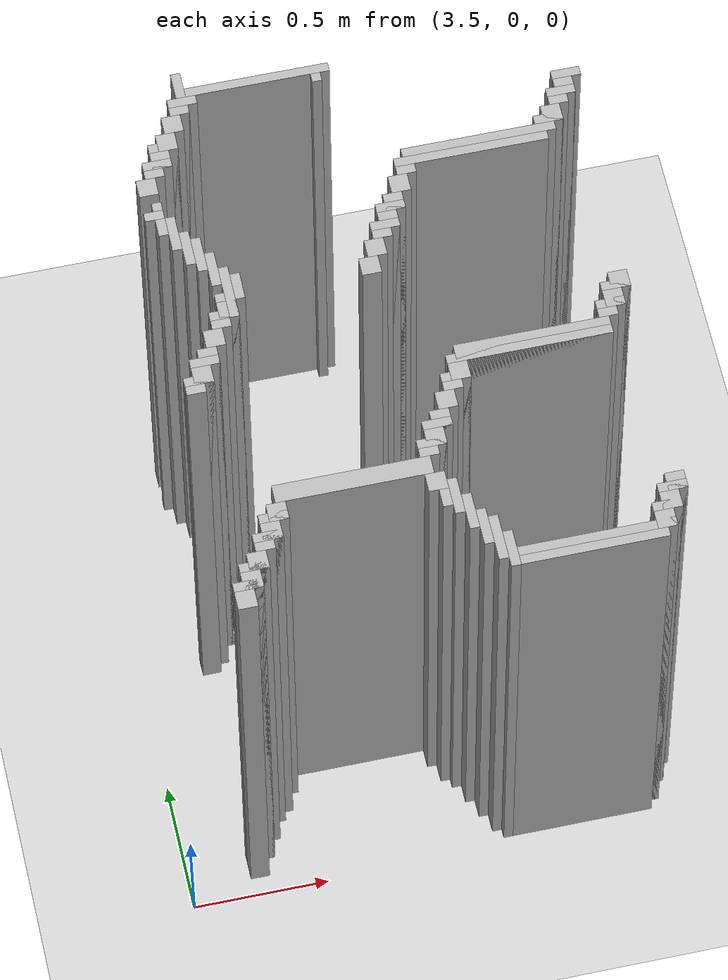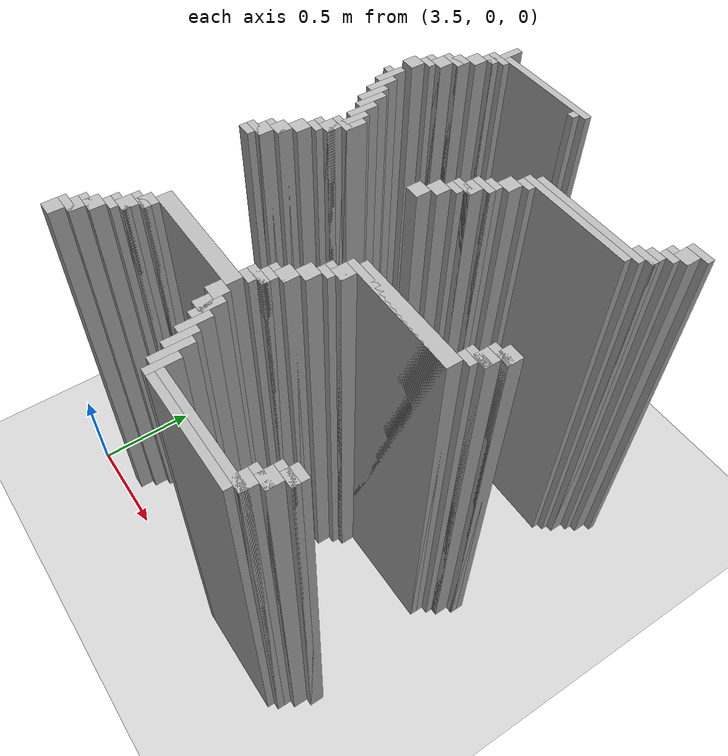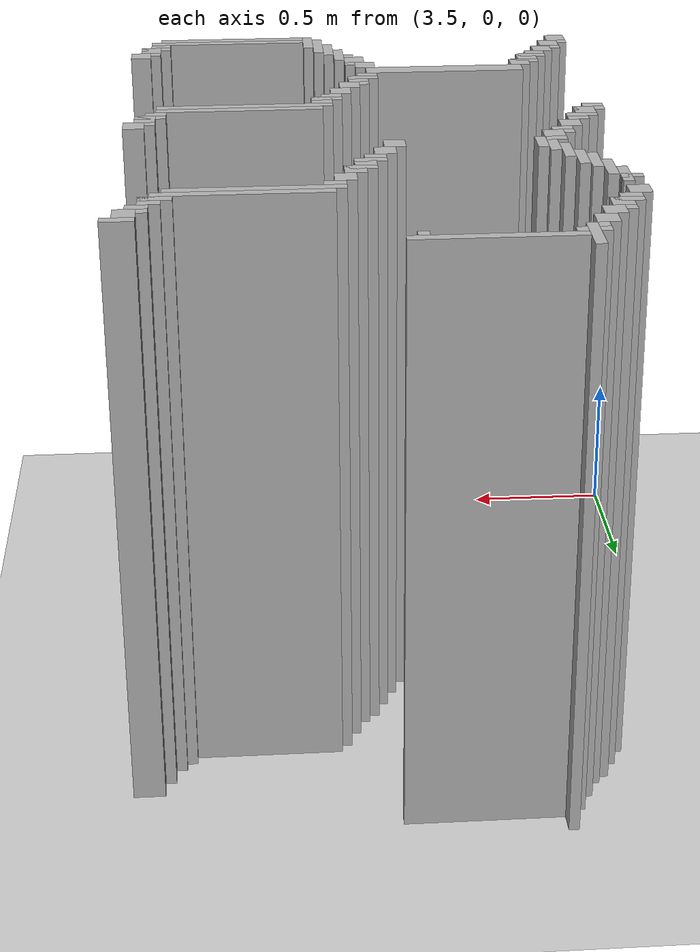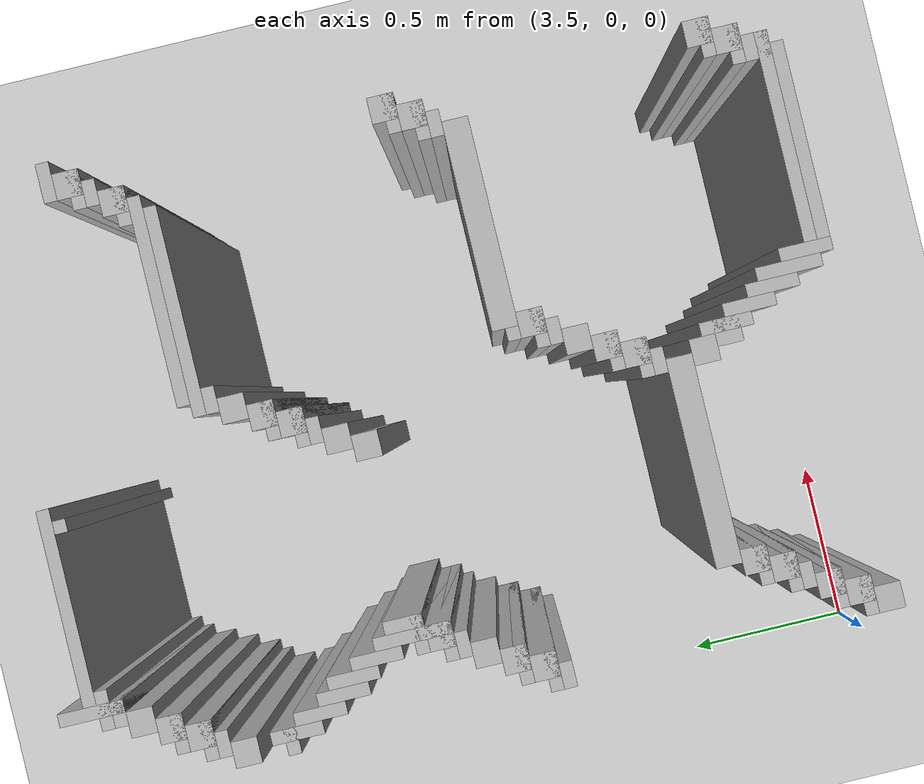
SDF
<sdf version="1.6">
 <world name="slam_world">
  <model name="ground_plane">
   <static>true</static>
   <link name="link">
    <collision name="collision">
     <geometry><plane><normal>0 0 1</normal><size>100 100</size></plane></geometry>
    </collision>
    <visual name="visual">
     <geometry><plane><normal>0 0 1</normal><size>100 100</size></plane></geometry>
     <material>
      <ambient>0.8 0.8 0.8 1</ambient>
      <diffuse>0.8 0.8 0.8 1</diffuse>
      <specular>0.8 0.8 0.8 1</specular>
     </material>
    </visual>
   </link>
  </model>
  <model name="wall_5121">
   <static>true</static>
   <pose>3.9501160092807424 2.1751740139211138 1.0 0 0 0</pose>
   <link name="link">
    <collision name="collision">
     <geometry><box><size>0.03480278422273782 0.17401392111368907 2.0</size></box></geometry>
    </collision>
    <visual name="visual">
     <geometry><box><size>0.03480278422273782 0.17401392111368907 2.0</size></box></geometry>
     <material><ambient>0.5 0.5 0.5 1</ambient><diffuse>0.7 0.7 0.7 1</diffuse></material>
    </visual>
   </link>
  </model>
  <model name="wall_5151">
   <static>true</static>
   <pose>4.228538283062645 2.1751740139211138 1.0 0 0 0</pose>
   <link name="link">
    <collision name="collision">
     <geometry><box><size>0.5220417633410672 0.03480278422273782 2.0</size></box></geometry>
    </collision>
    <visual name="visual">
     <geometry><box><size>0.5220417633410672 0.03480278422273782 2.0</size></box></geometry>
     <material><ambient>0.5 0.5 0.5 1</ambient><diffuse>0.7 0.7 0.7 1</diffuse></material>
    </visual>
   </link>
  </model>
  <model name="wall_5164">
   <static>true</static>
   <pose>3.9501160092807424 2.140371229698376 1.0 0 0 0</pose>
   <link name="link">
    <collision name="collision">
     <geometry><box><size>0.10440835266821345 0.03480278422273782 2.0</size></box></geometry>
    </collision>
    <visual name="visual">
     <geometry><box><size>0.10440835266821345 0.03480278422273782 2.0</size></box></geometry>
     <material><ambient>0.5 0.5 0.5 1</ambient><diffuse>0.7 0.7 0.7 1</diffuse></material>
    </visual>
   </link>
  </model>
  <model name="wall_5165">
   <static>true</static>
   <pose>4.437354988399072 2.140371229698376 1.0 0 0 0</pose>
   <link name="link">
    <collision name="collision">
     <geometry><box><size>0.03480278422273782 0.03480278422273782 2.0</size></box></geometry>
    </collision>
    <visual name="visual">
     <geometry><box><size>0.03480278422273782 0.03480278422273782 2.0</size></box></geometry>
     <material><ambient>0.5 0.5 0.5 1</ambient><diffuse>0.7 0.7 0.7 1</diffuse></material>
    </visual>
   </link>
  </model>
  <model name="wall_5182">
   <static>true</static>
   <pose>3.932714617169373 2.105568445475638 1.0 0 0 0</pose>
   <link name="link">
    <collision name="collision">
     <geometry><box><size>0.06960556844547564 0.03480278422273782 2.0</size></box></geometry>
    </collision>
    <visual name="visual">
     <geometry><box><size>0.06960556844547564 0.03480278422273782 2.0</size></box></geometry>
     <material><ambient>0.5 0.5 0.5 1</ambient><diffuse>0.7 0.7 0.7 1</diffuse></material>
    </visual>
   </link>
  </model>
  <model name="wall_5197">
   <static>true</static>
   <pose>3.897911832946636 2.053364269141531 1.0 0 0 0</pose>
   <link name="link">
    <collision name="collision">
     <geometry><box><size>0.06960556844547564 0.06960556844547564 2.0</size></box></geometry>
    </collision>
    <visual name="visual">
     <geometry><box><size>0.06960556844547564 0.06960556844547564 2.0</size></box></geometry>
     <material><ambient>0.5 0.5 0.5 1</ambient><diffuse>0.7 0.7 0.7 1</diffuse></material>
    </visual>
   </link>
  </model>
  <model name="wall_5212">
   <static>true</static>
   <pose>3.863109048723898 1.9837587006960555 1.0 0 0 0</pose>
   <link name="link">
    <collision name="collision">
     <geometry><box><size>0.06960556844547564 0.06960556844547564 2.0</size></box></geometry>
    </collision>
    <visual name="visual">
     <geometry><box><size>0.06960556844547564 0.06960556844547564 2.0</size></box></geometry>
     <material><ambient>0.5 0.5 0.5 1</ambient><diffuse>0.7 0.7 0.7 1</diffuse></material>
    </visual>
   </link>
  </model>
  <model name="wall_5227">
   <static>true</static>
   <pose>3.845707656612529 1.9663573085846866 1.0 0 0 0</pose>
   <link name="link">
    <collision name="collision">
     <geometry><box><size>0.10440835266821345 0.03480278422273782 2.0</size></box></geometry>
    </collision>
    <visual name="visual">
     <geometry><box><size>0.10440835266821345 0.03480278422273782 2.0</size></box></geometry>
     <material><ambient>0.5 0.5 0.5 1</ambient><diffuse>0.7 0.7 0.7 1</diffuse></material>
    </visual>
   </link>
  </model>
  <model name="wall_5228">
   <static>true</static>
   <pose>5.307424593967517 1.9663573085846866 1.0 0 0 0</pose>
   <link name="link">
    <collision name="collision">
     <geometry><box><size>0.10440835266821345 0.03480278422273782 2.0</size></box></geometry>
    </collision>
    <visual name="visual">
     <geometry><box><size>0.10440835266821345 0.03480278422273782 2.0</size></box></geometry>
     <material><ambient>0.5 0.5 0.5 1</ambient><diffuse>0.7 0.7 0.7 1</diffuse></material>
    </visual>
   </link>
  </model>
  <model name="wall_5239">
   <static>true</static>
   <pose>3.82830626450116 1.91415313225058 1.0 0 0 0</pose>
   <link name="link">
    <collision name="collision">
     <geometry><box><size>0.06960556844547564 0.06960556844547564 2.0</size></box></geometry>
    </collision>
    <visual name="visual">
     <geometry><box><size>0.06960556844547564 0.06960556844547564 2.0</size></box></geometry>
     <material><ambient>0.5 0.5 0.5 1</ambient><diffuse>0.7 0.7 0.7 1</diffuse></material>
    </visual>
   </link>
  </model>
  <model name="wall_5240">
   <static>true</static>
   <pose>5.290023201856148 1.91415313225058 1.0 0 0 0</pose>
   <link name="link">
    <collision name="collision">
     <geometry><box><size>0.06960556844547564 0.06960556844547564 2.0</size></box></geometry>
    </collision>
    <visual name="visual">
     <geometry><box><size>0.06960556844547564 0.06960556844547564 2.0</size></box></geometry>
     <material><ambient>0.5 0.5 0.5 1</ambient><diffuse>0.7 0.7 0.7 1</diffuse></material>
    </visual>
   </link>
  </model>
  <model name="wall_5252">
   <static>true</static>
   <pose>3.810904872389791 1.896751740139211 1.0 0 0 0</pose>
   <link name="link">
    <collision name="collision">
     <geometry><box><size>0.10440835266821345 0.03480278422273782 2.0</size></box></geometry>
    </collision>
    <visual name="visual">
     <geometry><box><size>0.10440835266821345 0.03480278422273782 2.0</size></box></geometry>
     <material><ambient>0.5 0.5 0.5 1</ambient><diffuse>0.7 0.7 0.7 1</diffuse></material>
    </visual>
   </link>
  </model>
  <model name="wall_5253">
   <static>true</static>
   <pose>5.27262180974478 1.896751740139211 1.0 0 0 0</pose>
   <link name="link">
    <collision name="collision">
     <geometry><box><size>0.10440835266821345 0.03480278422273782 2.0</size></box></geometry>
    </collision>
    <visual name="visual">
     <geometry><box><size>0.10440835266821345 0.03480278422273782 2.0</size></box></geometry>
     <material><ambient>0.5 0.5 0.5 1</ambient><diffuse>0.7 0.7 0.7 1</diffuse></material>
    </visual>
   </link>
  </model>
  <model name="wall_5264">
   <static>true</static>
   <pose>3.793503480278422 1.8619489559164732 1.0 0 0 0</pose>
   <link name="link">
    <collision name="collision">
     <geometry><box><size>0.06960556844547564 0.03480278422273782 2.0</size></box></geometry>
    </collision>
    <visual name="visual">
     <geometry><box><size>0.06960556844547564 0.03480278422273782 2.0</size></box></geometry>
     <material><ambient>0.5 0.5 0.5 1</ambient><diffuse>0.7 0.7 0.7 1</diffuse></material>
    </visual>
   </link>
  </model>
  <model name="wall_5265">
   <static>true</static>
   <pose>5.25522041763341 1.8619489559164732 1.0 0 0 0</pose>
   <link name="link">
    <collision name="collision">
     <geometry><box><size>0.06960556844547564 0.03480278422273782 2.0</size></box></geometry>
    </collision>
    <visual name="visual">
     <geometry><box><size>0.06960556844547564 0.03480278422273782 2.0</size></box></geometry>
     <material><ambient>0.5 0.5 0.5 1</ambient><diffuse>0.7 0.7 0.7 1</diffuse></material>
    </visual>
   </link>
  </model>
  <model name="wall_5276">
   <static>true</static>
   <pose>3.7587006960556844 1.8097447795823665 1.0 0 0 0</pose>
   <link name="link">
    <collision name="collision">
     <geometry><box><size>0.06960556844547564 0.06960556844547564 2.0</size></box></geometry>
    </collision>
    <visual name="visual">
     <geometry><box><size>0.06960556844547564 0.06960556844547564 2.0</size></box></geometry>
     <material><ambient>0.5 0.5 0.5 1</ambient><diffuse>0.7 0.7 0.7 1</diffuse></material>
    </visual>
   </link>
  </model>
  <model name="wall_5277">
   <static>true</static>
   <pose>5.220417633410673 1.8097447795823665 1.0 0 0 0</pose>
   <link name="link">
    <collision name="collision">
     <geometry><box><size>0.06960556844547564 0.06960556844547564 2.0</size></box></geometry>
    </collision>
    <visual name="visual">
     <geometry><box><size>0.06960556844547564 0.06960556844547564 2.0</size></box></geometry>
     <material><ambient>0.5 0.5 0.5 1</ambient><diffuse>0.7 0.7 0.7 1</diffuse></material>
    </visual>
   </link>
  </model>
  <model name="wall_5292">
   <static>true</static>
   <pose>5.203016241299304 1.7923433874709975 1.0 0 0 0</pose>
   <link name="link">
    <collision name="collision">
     <geometry><box><size>0.10440835266821345 0.03480278422273782 2.0</size></box></geometry>
    </collision>
    <visual name="visual">
     <geometry><box><size>0.10440835266821345 0.03480278422273782 2.0</size></box></geometry>
     <material><ambient>0.5 0.5 0.5 1</ambient><diffuse>0.7 0.7 0.7 1</diffuse></material>
    </visual>
   </link>
  </model>
  <model name="wall_5305">
   <static>true</static>
   <pose>4.94199535962877 1.75754060324826 1.0 0 0 0</pose>
   <link name="link">
    <collision name="collision">
     <geometry><box><size>0.5568445475638051 0.03480278422273782 2.0</size></box></geometry>
    </collision>
    <visual name="visual">
     <geometry><box><size>0.5568445475638051 0.03480278422273782 2.0</size></box></geometry>
     <material><ambient>0.5 0.5 0.5 1</ambient><diffuse>0.7 0.7 0.7 1</diffuse></material>
    </visual>
   </link>
  </model>
  <model name="wall_5317">
   <static>true</static>
   <pose>3.776102088167053 1.6705336426914152 1.0 0 0 0</pose>
   <link name="link">
    <collision name="collision">
     <geometry><box><size>0.03480278422273782 0.13921113689095127 2.0</size></box></geometry>
    </collision>
    <visual name="visual">
     <geometry><box><size>0.03480278422273782 0.13921113689095127 2.0</size></box></geometry>
     <material><ambient>0.5 0.5 0.5 1</ambient><diffuse>0.7 0.7 0.7 1</diffuse></material>
    </visual>
   </link>
  </model>
  <model name="wall_5318">
   <static>true</static>
   <pose>4.907192575406032 1.722737819025522 1.0 0 0 0</pose>
   <link name="link">
    <collision name="collision">
     <geometry><box><size>0.5568445475638051 0.03480278422273782 2.0</size></box></geometry>
    </collision>
    <visual name="visual">
     <geometry><box><size>0.5568445475638051 0.03480278422273782 2.0</size></box></geometry>
     <material><ambient>0.5 0.5 0.5 1</ambient><diffuse>0.7 0.7 0.7 1</diffuse></material>
    </visual>
   </link>
  </model>
  <model name="wall_5329">
   <static>true</static>
   <pose>3.7587006960556844 1.6879350348027842 1.0 0 0 0</pose>
   <link name="link">
    <collision name="collision">
     <geometry><box><size>0.06960556844547564 0.03480278422273782 2.0</size></box></geometry>
    </collision>
    <visual name="visual">
     <geometry><box><size>0.06960556844547564 0.03480278422273782 2.0</size></box></geometry>
     <material><ambient>0.5 0.5 0.5 1</ambient><diffuse>0.7 0.7 0.7 1</diffuse></material>
    </visual>
   </link>
  </model>
  <model name="wall_5330">
   <static>true</static>
   <pose>4.663573085846868 1.6879350348027842 1.0 0 0 0</pose>
   <link name="link">
    <collision name="collision">
     <geometry><box><size>0.06960556844547564 0.03480278422273782 2.0</size></box></geometry>
    </collision>
    <visual name="visual">
     <geometry><box><size>0.06960556844547564 0.03480278422273782 2.0</size></box></geometry>
     <material><ambient>0.5 0.5 0.5 1</ambient><diffuse>0.7 0.7 0.7 1</diffuse></material>
    </visual>
   </link>
  </model>
  <model name="wall_5342">
   <static>true</static>
   <pose>3.810904872389791 1.6009280742459395 1.0 0 0 0</pose>
   <link name="link">
    <collision name="collision">
     <geometry><box><size>0.03480278422273782 0.13921113689095127 2.0</size></box></geometry>
    </collision>
    <visual name="visual">
     <geometry><box><size>0.03480278422273782 0.13921113689095127 2.0</size></box></geometry>
     <material><ambient>0.5 0.5 0.5 1</ambient><diffuse>0.7 0.7 0.7 1</diffuse></material>
    </visual>
   </link>
  </model>
  <model name="wall_5343">
   <static>true</static>
   <pose>4.6287703016241295 1.6357308584686774 1.0 0 0 0</pose>
   <link name="link">
    <collision name="collision">
     <geometry><box><size>0.06960556844547564 0.06960556844547564 2.0</size></box></geometry>
    </collision>
    <visual name="visual">
     <geometry><box><size>0.06960556844547564 0.06960556844547564 2.0</size></box></geometry>
     <material><ambient>0.5 0.5 0.5 1</ambient><diffuse>0.7 0.7 0.7 1</diffuse></material>
    </visual>
   </link>
  </model>
  <model name="wall_5355">
   <static>true</static>
   <pose>3.845707656612529 1.531322505800464 1.0 0 0 0</pose>
   <link name="link">
    <collision name="collision">
     <geometry><box><size>0.03480278422273782 0.13921113689095127 2.0</size></box></geometry>
    </collision>
    <visual name="visual">
     <geometry><box><size>0.03480278422273782 0.13921113689095127 2.0</size></box></geometry>
     <material><ambient>0.5 0.5 0.5 1</ambient><diffuse>0.7 0.7 0.7 1</diffuse></material>
    </visual>
   </link>
  </model>
  <model name="wall_5356">
   <static>true</static>
   <pose>4.593967517401392 1.5661252900232019 1.0 0 0 0</pose>
   <link name="link">
    <collision name="collision">
     <geometry><box><size>0.06960556844547564 0.06960556844547564 2.0</size></box></geometry>
    </collision>
    <visual name="visual">
     <geometry><box><size>0.06960556844547564 0.06960556844547564 2.0</size></box></geometry>
     <material><ambient>0.5 0.5 0.5 1</ambient><diffuse>0.7 0.7 0.7 1</diffuse></material>
    </visual>
   </link>
  </model>
  <model name="wall_5368">
   <static>true</static>
   <pose>3.8805104408352666 1.4965197215777262 1.0 0 0 0</pose>
   <link name="link">
    <collision name="collision">
     <geometry><box><size>0.03480278422273782 0.13921113689095127 2.0</size></box></geometry>
    </collision>
    <visual name="visual">
     <geometry><box><size>0.03480278422273782 0.13921113689095127 2.0</size></box></geometry>
     <material><ambient>0.5 0.5 0.5 1</ambient><diffuse>0.7 0.7 0.7 1</diffuse></material>
    </visual>
   </link>
  </model>
  <model name="wall_5369">
   <static>true</static>
   <pose>4.576566125290023 1.548723897911833 1.0 0 0 0</pose>
   <link name="link">
    <collision name="collision">
     <geometry><box><size>0.10440835266821345 0.03480278422273782 2.0</size></box></geometry>
    </collision>
    <visual name="visual">
     <geometry><box><size>0.10440835266821345 0.03480278422273782 2.0</size></box></geometry>
     <material><ambient>0.5 0.5 0.5 1</ambient><diffuse>0.7 0.7 0.7 1</diffuse></material>
    </visual>
   </link>
  </model>
  <model name="wall_5380">
   <static>true</static>
   <pose>4.559164733178654 1.4965197215777262 1.0 0 0 0</pose>
   <link name="link">
    <collision name="collision">
     <geometry><box><size>0.06960556844547564 0.06960556844547564 2.0</size></box></geometry>
    </collision>
    <visual name="visual">
     <geometry><box><size>0.06960556844547564 0.06960556844547564 2.0</size></box></geometry>
     <material><ambient>0.5 0.5 0.5 1</ambient><diffuse>0.7 0.7 0.7 1</diffuse></material>
    </visual>
   </link>
  </model>
  <model name="wall_5390">
   <static>true</static>
   <pose>3.9153132250580045 1.4269141531322505 1.0 0 0 0</pose>
   <link name="link">
    <collision name="collision">
     <geometry><box><size>0.03480278422273782 0.13921113689095127 2.0</size></box></geometry>
    </collision>
    <visual name="visual">
     <geometry><box><size>0.03480278422273782 0.13921113689095127 2.0</size></box></geometry>
     <material><ambient>0.5 0.5 0.5 1</ambient><diffuse>0.7 0.7 0.7 1</diffuse></material>
    </visual>
   </link>
  </model>
  <model name="wall_5391">
   <static>true</static>
   <pose>4.541763341067285 1.4791183294663572 1.0 0 0 0</pose>
   <link name="link">
    <collision name="collision">
     <geometry><box><size>0.10440835266821345 0.03480278422273782 2.0</size></box></geometry>
    </collision>
    <visual name="visual">
     <geometry><box><size>0.10440835266821345 0.03480278422273782 2.0</size></box></geometry>
     <material><ambient>0.5 0.5 0.5 1</ambient><diffuse>0.7 0.7 0.7 1</diffuse></material>
    </visual>
   </link>
  </model>
  <model name="wall_5402">
   <static>true</static>
   <pose>4.524361948955916 1.4443155452436194 1.0 0 0 0</pose>
   <link name="link">
    <collision name="collision">
     <geometry><box><size>0.06960556844547564 0.03480278422273782 2.0</size></box></geometry>
    </collision>
    <visual name="visual">
     <geometry><box><size>0.06960556844547564 0.03480278422273782 2.0</size></box></geometry>
     <material><ambient>0.5 0.5 0.5 1</ambient><diffuse>0.7 0.7 0.7 1</diffuse></material>
    </visual>
   </link>
  </model>
  <model name="wall_5410">
   <static>true</static>
   <pose>3.9501160092807424 1.322505800464037 1.0 0 0 0</pose>
   <link name="link">
    <collision name="collision">
     <geometry><box><size>0.03480278422273782 0.2088167053364269 2.0</size></box></geometry>
    </collision>
    <visual name="visual">
     <geometry><box><size>0.03480278422273782 0.2088167053364269 2.0</size></box></geometry>
     <material><ambient>0.5 0.5 0.5 1</ambient><diffuse>0.7 0.7 0.7 1</diffuse></material>
    </visual>
   </link>
  </model>
  <model name="wall_5411">
   <static>true</static>
   <pose>4.489559164733178 1.3921113689095126 1.0 0 0 0</pose>
   <link name="link">
    <collision name="collision">
     <geometry><box><size>0.06960556844547564 0.06960556844547564 2.0</size></box></geometry>
    </collision>
    <visual name="visual">
     <geometry><box><size>0.06960556844547564 0.06960556844547564 2.0</size></box></geometry>
     <material><ambient>0.5 0.5 0.5 1</ambient><diffuse>0.7 0.7 0.7 1</diffuse></material>
    </visual>
   </link>
  </model>
  <model name="wall_5422">
   <static>true</static>
   <pose>3.98491879350348 1.339907192575406 1.0 0 0 0</pose>
   <link name="link">
    <collision name="collision">
     <geometry><box><size>0.03480278422273782 0.10440835266821345 2.0</size></box></geometry>
    </collision>
    <visual name="visual">
     <geometry><box><size>0.03480278422273782 0.10440835266821345 2.0</size></box></geometry>
     <material><ambient>0.5 0.5 0.5 1</ambient><diffuse>0.7 0.7 0.7 1</diffuse></material>
    </visual>
   </link>
  </model>
  <model name="wall_5434">
   <static>true</static>
   <pose>4.454756380510441 1.322505800464037 1.0 0 0 0</pose>
   <link name="link">
    <collision name="collision">
     <geometry><box><size>0.06960556844547564 0.06960556844547564 2.0</size></box></geometry>
    </collision>
    <visual name="visual">
     <geometry><box><size>0.06960556844547564 0.06960556844547564 2.0</size></box></geometry>
     <material><ambient>0.5 0.5 0.5 1</ambient><diffuse>0.7 0.7 0.7 1</diffuse></material>
    </visual>
   </link>
  </model>
  <model name="wall_5446">
   <static>true</static>
   <pose>3.9501160092807424 1.3051044083526682 1.0 0 0 0</pose>
   <link name="link">
    <collision name="collision">
     <geometry><box><size>0.10440835266821345 0.03480278422273782 2.0</size></box></geometry>
    </collision>
    <visual name="visual">
     <geometry><box><size>0.10440835266821345 0.03480278422273782 2.0</size></box></geometry>
     <material><ambient>0.5 0.5 0.5 1</ambient><diffuse>0.7 0.7 0.7 1</diffuse></material>
    </visual>
   </link>
  </model>
  <model name="wall_5460">
   <static>true</static>
   <pose>3.932714617169373 1.2529002320185614 1.0 0 0 0</pose>
   <link name="link">
    <collision name="collision">
     <geometry><box><size>0.06960556844547564 0.06960556844547564 2.0</size></box></geometry>
    </collision>
    <visual name="visual">
     <geometry><box><size>0.06960556844547564 0.06960556844547564 2.0</size></box></geometry>
     <material><ambient>0.5 0.5 0.5 1</ambient><diffuse>0.7 0.7 0.7 1</diffuse></material>
    </visual>
   </link>
  </model>
  <model name="wall_5475">
   <static>true</static>
   <pose>3.9153132250580045 1.2354988399071924 1.0 0 0 0</pose>
   <link name="link">
    <collision name="collision">
     <geometry><box><size>0.10440835266821345 0.03480278422273782 2.0</size></box></geometry>
    </collision>
    <visual name="visual">
     <geometry><box><size>0.10440835266821345 0.03480278422273782 2.0</size></box></geometry>
     <material><ambient>0.5 0.5 0.5 1</ambient><diffuse>0.7 0.7 0.7 1</diffuse></material>
    </visual>
   </link>
  </model>
  <model name="wall_5489">
   <static>true</static>
   <pose>3.897911832946636 1.2006960556844548 1.0 0 0 0</pose>
   <link name="link">
    <collision name="collision">
     <geometry><box><size>0.06960556844547564 0.03480278422273782 2.0</size></box></geometry>
    </collision>
    <visual name="visual">
     <geometry><box><size>0.06960556844547564 0.03480278422273782 2.0</size></box></geometry>
     <material><ambient>0.5 0.5 0.5 1</ambient><diffuse>0.7 0.7 0.7 1</diffuse></material>
    </visual>
   </link>
  </model>
  <model name="wall_5502">
   <static>true</static>
   <pose>3.863109048723898 1.148491879350348 1.0 0 0 0</pose>
   <link name="link">
    <collision name="collision">
     <geometry><box><size>0.06960556844547564 0.06960556844547564 2.0</size></box></geometry>
    </collision>
    <visual name="visual">
     <geometry><box><size>0.06960556844547564 0.06960556844547564 2.0</size></box></geometry>
     <material><ambient>0.5 0.5 0.5 1</ambient><diffuse>0.7 0.7 0.7 1</diffuse></material>
    </visual>
   </link>
  </model>
  <model name="wall_5517">
   <static>true</static>
   <pose>3.82830626450116 1.0788863109048723 1.0 0 0 0</pose>
   <link name="link">
    <collision name="collision">
     <geometry><box><size>0.06960556844547564 0.06960556844547564 2.0</size></box></geometry>
    </collision>
    <visual name="visual">
     <geometry><box><size>0.06960556844547564 0.06960556844547564 2.0</size></box></geometry>
     <material><ambient>0.5 0.5 0.5 1</ambient><diffuse>0.7 0.7 0.7 1</diffuse></material>
    </visual>
   </link>
  </model>
  <model name="wall_5518">
   <static>true</static>
   <pose>5.290023201856148 1.0788863109048723 1.0 0 0 0</pose>
   <link name="link">
    <collision name="collision">
     <geometry><box><size>0.06960556844547564 0.06960556844547564 2.0</size></box></geometry>
    </collision>
    <visual name="visual">
     <geometry><box><size>0.06960556844547564 0.06960556844547564 2.0</size></box></geometry>
     <material><ambient>0.5 0.5 0.5 1</ambient><diffuse>0.7 0.7 0.7 1</diffuse></material>
    </visual>
   </link>
  </model>
  <model name="wall_5532">
   <static>true</static>
   <pose>3.810904872389791 1.0614849187935034 1.0 0 0 0</pose>
   <link name="link">
    <collision name="collision">
     <geometry><box><size>0.10440835266821345 0.03480278422273782 2.0</size></box></geometry>
    </collision>
    <visual name="visual">
     <geometry><box><size>0.10440835266821345 0.03480278422273782 2.0</size></box></geometry>
     <material><ambient>0.5 0.5 0.5 1</ambient><diffuse>0.7 0.7 0.7 1</diffuse></material>
    </visual>
   </link>
  </model>
  <model name="wall_5533">
   <static>true</static>
   <pose>5.27262180974478 1.0614849187935034 1.0 0 0 0</pose>
   <link name="link">
    <collision name="collision">
     <geometry><box><size>0.10440835266821345 0.03480278422273782 2.0</size></box></geometry>
    </collision>
    <visual name="visual">
     <geometry><box><size>0.10440835266821345 0.03480278422273782 2.0</size></box></geometry>
     <material><ambient>0.5 0.5 0.5 1</ambient><diffuse>0.7 0.7 0.7 1</diffuse></material>
    </visual>
   </link>
  </model>
  <model name="wall_5544">
   <static>true</static>
   <pose>3.793503480278422 1.0092807424593968 1.0 0 0 0</pose>
   <link name="link">
    <collision name="collision">
     <geometry><box><size>0.06960556844547564 0.06960556844547564 2.0</size></box></geometry>
    </collision>
    <visual name="visual">
     <geometry><box><size>0.06960556844547564 0.06960556844547564 2.0</size></box></geometry>
     <material><ambient>0.5 0.5 0.5 1</ambient><diffuse>0.7 0.7 0.7 1</diffuse></material>
    </visual>
   </link>
  </model>
  <model name="wall_5545">
   <static>true</static>
   <pose>5.25522041763341 1.0092807424593968 1.0 0 0 0</pose>
   <link name="link">
    <collision name="collision">
     <geometry><box><size>0.06960556844547564 0.06960556844547564 2.0</size></box></geometry>
    </collision>
    <visual name="visual">
     <geometry><box><size>0.06960556844547564 0.06960556844547564 2.0</size></box></geometry>
     <material><ambient>0.5 0.5 0.5 1</ambient><diffuse>0.7 0.7 0.7 1</diffuse></material>
    </visual>
   </link>
  </model>
  <model name="wall_5556">
   <static>true</static>
   <pose>3.776102088167053 0.9918793503480278 1.0 0 0 0</pose>
   <link name="link">
    <collision name="collision">
     <geometry><box><size>0.10440835266821345 0.03480278422273782 2.0</size></box></geometry>
    </collision>
    <visual name="visual">
     <geometry><box><size>0.10440835266821345 0.03480278422273782 2.0</size></box></geometry>
     <material><ambient>0.5 0.5 0.5 1</ambient><diffuse>0.7 0.7 0.7 1</diffuse></material>
    </visual>
   </link>
  </model>
  <model name="wall_5557">
   <static>true</static>
   <pose>5.237819025522041 0.9918793503480278 1.0 0 0 0</pose>
   <link name="link">
    <collision name="collision">
     <geometry><box><size>0.10440835266821345 0.03480278422273782 2.0</size></box></geometry>
    </collision>
    <visual name="visual">
     <geometry><box><size>0.10440835266821345 0.03480278422273782 2.0</size></box></geometry>
     <material><ambient>0.5 0.5 0.5 1</ambient><diffuse>0.7 0.7 0.7 1</diffuse></material>
    </visual>
   </link>
  </model>
  <model name="wall_5568">
   <static>true</static>
   <pose>3.7587006960556844 0.95707656612529 1.0 0 0 0</pose>
   <link name="link">
    <collision name="collision">
     <geometry><box><size>0.06960556844547564 0.03480278422273782 2.0</size></box></geometry>
    </collision>
    <visual name="visual">
     <geometry><box><size>0.06960556844547564 0.03480278422273782 2.0</size></box></geometry>
     <material><ambient>0.5 0.5 0.5 1</ambient><diffuse>0.7 0.7 0.7 1</diffuse></material>
    </visual>
   </link>
  </model>
  <model name="wall_5569">
   <static>true</static>
   <pose>5.220417633410673 0.95707656612529 1.0 0 0 0</pose>
   <link name="link">
    <collision name="collision">
     <geometry><box><size>0.06960556844547564 0.03480278422273782 2.0</size></box></geometry>
    </collision>
    <visual name="visual">
     <geometry><box><size>0.06960556844547564 0.03480278422273782 2.0</size></box></geometry>
     <material><ambient>0.5 0.5 0.5 1</ambient><diffuse>0.7 0.7 0.7 1</diffuse></material>
    </visual>
   </link>
  </model>
  <model name="wall_5579">
   <static>true</static>
   <pose>4.94199535962877 0.9048723897911832 1.0 0 0 0</pose>
   <link name="link">
    <collision name="collision">
     <geometry><box><size>0.5568445475638051 0.06960556844547564 2.0</size></box></geometry>
    </collision>
    <visual name="visual">
     <geometry><box><size>0.5568445475638051 0.06960556844547564 2.0</size></box></geometry>
     <material><ambient>0.5 0.5 0.5 1</ambient><diffuse>0.7 0.7 0.7 1</diffuse></material>
    </visual>
   </link>
  </model>
  <model name="wall_5589">
   <static>true</static>
   <pose>4.924593967517401 0.8874709976798143 1.0 0 0 0</pose>
   <link name="link">
    <collision name="collision">
     <geometry><box><size>0.5916473317865429 0.03480278422273782 2.0</size></box></geometry>
    </collision>
    <visual name="visual">
     <geometry><box><size>0.5916473317865429 0.03480278422273782 2.0</size></box></geometry>
     <material><ambient>0.5 0.5 0.5 1</ambient><diffuse>0.7 0.7 0.7 1</diffuse></material>
    </visual>
   </link>
  </model>
  <model name="wall_5596">
   <static>true</static>
   <pose>4.663573085846868 0.8352668213457076 1.0 0 0 0</pose>
   <link name="link">
    <collision name="collision">
     <geometry><box><size>0.06960556844547564 0.06960556844547564 2.0</size></box></geometry>
    </collision>
    <visual name="visual">
     <geometry><box><size>0.06960556844547564 0.06960556844547564 2.0</size></box></geometry>
     <material><ambient>0.5 0.5 0.5 1</ambient><diffuse>0.7 0.7 0.7 1</diffuse></material>
    </visual>
   </link>
  </model>
  <model name="wall_5603">
   <static>true</static>
   <pose>4.646171693735498 0.8178654292343387 1.0 0 0 0</pose>
   <link name="link">
    <collision name="collision">
     <geometry><box><size>0.10440835266821345 0.03480278422273782 2.0</size></box></geometry>
    </collision>
    <visual name="visual">
     <geometry><box><size>0.10440835266821345 0.03480278422273782 2.0</size></box></geometry>
     <material><ambient>0.5 0.5 0.5 1</ambient><diffuse>0.7 0.7 0.7 1</diffuse></material>
    </visual>
   </link>
  </model>
  <model name="wall_5610">
   <static>true</static>
   <pose>4.6287703016241295 0.7830626450116009 1.0 0 0 0</pose>
   <link name="link">
    <collision name="collision">
     <geometry><box><size>0.06960556844547564 0.03480278422273782 2.0</size></box></geometry>
    </collision>
    <visual name="visual">
     <geometry><box><size>0.06960556844547564 0.03480278422273782 2.0</size></box></geometry>
     <material><ambient>0.5 0.5 0.5 1</ambient><diffuse>0.7 0.7 0.7 1</diffuse></material>
    </visual>
   </link>
  </model>
  <model name="wall_5614">
   <static>true</static>
   <pose>4.593967517401392 0.7308584686774942 1.0 0 0 0</pose>
   <link name="link">
    <collision name="collision">
     <geometry><box><size>0.06960556844547564 0.06960556844547564 2.0</size></box></geometry>
    </collision>
    <visual name="visual">
     <geometry><box><size>0.06960556844547564 0.06960556844547564 2.0</size></box></geometry>
     <material><ambient>0.5 0.5 0.5 1</ambient><diffuse>0.7 0.7 0.7 1</diffuse></material>
    </visual>
   </link>
  </model>
  <model name="wall_5621">
   <static>true</static>
   <pose>4.559164733178654 0.6612529002320185 1.0 0 0 0</pose>
   <link name="link">
    <collision name="collision">
     <geometry><box><size>0.06960556844547564 0.06960556844547564 2.0</size></box></geometry>
    </collision>
    <visual name="visual">
     <geometry><box><size>0.06960556844547564 0.06960556844547564 2.0</size></box></geometry>
     <material><ambient>0.5 0.5 0.5 1</ambient><diffuse>0.7 0.7 0.7 1</diffuse></material>
    </visual>
   </link>
  </model>
  <model name="wall_5628">
   <static>true</static>
   <pose>4.541763341067285 0.6438515081206496 1.0 0 0 0</pose>
   <link name="link">
    <collision name="collision">
     <geometry><box><size>0.10440835266821345 0.03480278422273782 2.0</size></box></geometry>
    </collision>
    <visual name="visual">
     <geometry><box><size>0.10440835266821345 0.03480278422273782 2.0</size></box></geometry>
     <material><ambient>0.5 0.5 0.5 1</ambient><diffuse>0.7 0.7 0.7 1</diffuse></material>
    </visual>
   </link>
  </model>
  <model name="wall_5635">
   <static>true</static>
   <pose>4.524361948955916 0.5916473317865429 1.0 0 0 0</pose>
   <link name="link">
    <collision name="collision">
     <geometry><box><size>0.06960556844547564 0.06960556844547564 2.0</size></box></geometry>
    </collision>
    <visual name="visual">
     <geometry><box><size>0.06960556844547564 0.06960556844547564 2.0</size></box></geometry>
     <material><ambient>0.5 0.5 0.5 1</ambient><diffuse>0.7 0.7 0.7 1</diffuse></material>
    </visual>
   </link>
  </model>
  <model name="wall_5639">
   <static>true</static>
   <pose>4.506960556844548 0.574245939675174 1.0 0 0 0</pose>
   <link name="link">
    <collision name="collision">
     <geometry><box><size>0.10440835266821345 0.03480278422273782 2.0</size></box></geometry>
    </collision>
    <visual name="visual">
     <geometry><box><size>0.10440835266821345 0.03480278422273782 2.0</size></box></geometry>
     <material><ambient>0.5 0.5 0.5 1</ambient><diffuse>0.7 0.7 0.7 1</diffuse></material>
    </visual>
   </link>
  </model>
  <model name="wall_5646">
   <static>true</static>
   <pose>4.489559164733178 0.5394431554524362 1.0 0 0 0</pose>
   <link name="link">
    <collision name="collision">
     <geometry><box><size>0.06960556844547564 0.03480278422273782 2.0</size></box></geometry>
    </collision>
    <visual name="visual">
     <geometry><box><size>0.06960556844547564 0.03480278422273782 2.0</size></box></geometry>
     <material><ambient>0.5 0.5 0.5 1</ambient><diffuse>0.7 0.7 0.7 1</diffuse></material>
    </visual>
   </link>
  </model>
  <model name="wall_5652">
   <static>true</static>
   <pose>4.211136890951276 0.4872389791183295 1.0 0 0 0</pose>
   <link name="link">
    <collision name="collision">
     <geometry><box><size>0.5568445475638051 0.06960556844547564 2.0</size></box></geometry>
    </collision>
    <visual name="visual">
     <geometry><box><size>0.5568445475638051 0.06960556844547564 2.0</size></box></geometry>
     <material><ambient>0.5 0.5 0.5 1</ambient><diffuse>0.7 0.7 0.7 1</diffuse></material>
    </visual>
   </link>
  </model>
  <model name="wall_5665">
   <static>true</static>
   <pose>3.932714617169373 0.4176334106728538 1.0 0 0 0</pose>
   <link name="link">
    <collision name="collision">
     <geometry><box><size>0.06960556844547564 0.06960556844547564 2.0</size></box></geometry>
    </collision>
    <visual name="visual">
     <geometry><box><size>0.06960556844547564 0.06960556844547564 2.0</size></box></geometry>
     <material><ambient>0.5 0.5 0.5 1</ambient><diffuse>0.7 0.7 0.7 1</diffuse></material>
    </visual>
   </link>
  </model>
  <model name="wall_5666">
   <static>true</static>
   <pose>4.489559164733178 0.4176334106728538 1.0 0 0 0</pose>
   <link name="link">
    <collision name="collision">
     <geometry><box><size>0.06960556844547564 0.06960556844547564 2.0</size></box></geometry>
    </collision>
    <visual name="visual">
     <geometry><box><size>0.06960556844547564 0.06960556844547564 2.0</size></box></geometry>
     <material><ambient>0.5 0.5 0.5 1</ambient><diffuse>0.7 0.7 0.7 1</diffuse></material>
    </visual>
   </link>
  </model>
  <model name="wall_5685">
   <static>true</static>
   <pose>3.9153132250580045 0.4002320185614849 1.0 0 0 0</pose>
   <link name="link">
    <collision name="collision">
     <geometry><box><size>0.10440835266821345 0.03480278422273782 2.0</size></box></geometry>
    </collision>
    <visual name="visual">
     <geometry><box><size>0.10440835266821345 0.03480278422273782 2.0</size></box></geometry>
     <material><ambient>0.5 0.5 0.5 1</ambient><diffuse>0.7 0.7 0.7 1</diffuse></material>
    </visual>
   </link>
  </model>
  <model name="wall_5686">
   <static>true</static>
   <pose>4.541763341067285 0.34802784222737815 1.0 0 0 0</pose>
   <link name="link">
    <collision name="collision">
     <geometry><box><size>0.03480278422273782 0.13921113689095127 2.0</size></box></geometry>
    </collision>
    <visual name="visual">
     <geometry><box><size>0.03480278422273782 0.13921113689095127 2.0</size></box></geometry>
     <material><ambient>0.5 0.5 0.5 1</ambient><diffuse>0.7 0.7 0.7 1</diffuse></material>
    </visual>
   </link>
  </model>
  <model name="wall_5705">
   <static>true</static>
   <pose>3.897911832946636 0.34802784222737815 1.0 0 0 0</pose>
   <link name="link">
    <collision name="collision">
     <geometry><box><size>0.06960556844547564 0.06960556844547564 2.0</size></box></geometry>
    </collision>
    <visual name="visual">
     <geometry><box><size>0.06960556844547564 0.06960556844547564 2.0</size></box></geometry>
     <material><ambient>0.5 0.5 0.5 1</ambient><diffuse>0.7 0.7 0.7 1</diffuse></material>
    </visual>
   </link>
  </model>
  <model name="wall_5706">
   <static>true</static>
   <pose>4.524361948955916 0.34802784222737815 1.0 0 0 0</pose>
   <link name="link">
    <collision name="collision">
     <geometry><box><size>0.06960556844547564 0.06960556844547564 2.0</size></box></geometry>
    </collision>
    <visual name="visual">
     <geometry><box><size>0.06960556844547564 0.06960556844547564 2.0</size></box></geometry>
     <material><ambient>0.5 0.5 0.5 1</ambient><diffuse>0.7 0.7 0.7 1</diffuse></material>
    </visual>
   </link>
  </model>
  <model name="wall_5725">
   <static>true</static>
   <pose>3.8805104408352666 0.3306264501160093 1.0 0 0 0</pose>
   <link name="link">
    <collision name="collision">
     <geometry><box><size>0.10440835266821345 0.03480278422273782 2.0</size></box></geometry>
    </collision>
    <visual name="visual">
     <geometry><box><size>0.10440835266821345 0.03480278422273782 2.0</size></box></geometry>
     <material><ambient>0.5 0.5 0.5 1</ambient><diffuse>0.7 0.7 0.7 1</diffuse></material>
    </visual>
   </link>
  </model>
  <model name="wall_5726">
   <static>true</static>
   <pose>4.576566125290023 0.27842227378190254 1.0 0 0 0</pose>
   <link name="link">
    <collision name="collision">
     <geometry><box><size>0.03480278422273782 0.13921113689095127 2.0</size></box></geometry>
    </collision>
    <visual name="visual">
     <geometry><box><size>0.03480278422273782 0.13921113689095127 2.0</size></box></geometry>
     <material><ambient>0.5 0.5 0.5 1</ambient><diffuse>0.7 0.7 0.7 1</diffuse></material>
    </visual>
   </link>
  </model>
  <model name="wall_5742">
   <static>true</static>
   <pose>3.863109048723898 0.29582366589327147 1.0 0 0 0</pose>
   <link name="link">
    <collision name="collision">
     <geometry><box><size>0.06960556844547564 0.03480278422273782 2.0</size></box></geometry>
    </collision>
    <visual name="visual">
     <geometry><box><size>0.06960556844547564 0.03480278422273782 2.0</size></box></geometry>
     <material><ambient>0.5 0.5 0.5 1</ambient><diffuse>0.7 0.7 0.7 1</diffuse></material>
    </visual>
   </link>
  </model>
  <model name="wall_5755">
   <static>true</static>
   <pose>3.82830626450116 0.24361948955916474 1.0 0 0 0</pose>
   <link name="link">
    <collision name="collision">
     <geometry><box><size>0.06960556844547564 0.06960556844547564 2.0</size></box></geometry>
    </collision>
    <visual name="visual">
     <geometry><box><size>0.06960556844547564 0.06960556844547564 2.0</size></box></geometry>
     <material><ambient>0.5 0.5 0.5 1</ambient><diffuse>0.7 0.7 0.7 1</diffuse></material>
    </visual>
   </link>
  </model>
  <model name="wall_5756">
   <static>true</static>
   <pose>4.611368909512761 0.2088167053364269 1.0 0 0 0</pose>
   <link name="link">
    <collision name="collision">
     <geometry><box><size>0.03480278422273782 0.13921113689095127 2.0</size></box></geometry>
    </collision>
    <visual name="visual">
     <geometry><box><size>0.03480278422273782 0.13921113689095127 2.0</size></box></geometry>
     <material><ambient>0.5 0.5 0.5 1</ambient><diffuse>0.7 0.7 0.7 1</diffuse></material>
    </visual>
   </link>
  </model>
  <model name="wall_5757">
   <static>true</static>
   <pose>5.290023201856148 0.24361948955916474 1.0 0 0 0</pose>
   <link name="link">
    <collision name="collision">
     <geometry><box><size>0.06960556844547564 0.06960556844547564 2.0</size></box></geometry>
    </collision>
    <visual name="visual">
     <geometry><box><size>0.06960556844547564 0.06960556844547564 2.0</size></box></geometry>
     <material><ambient>0.5 0.5 0.5 1</ambient><diffuse>0.7 0.7 0.7 1</diffuse></material>
    </visual>
   </link>
  </model>
  <model name="wall_5775">
   <static>true</static>
   <pose>3.810904872389791 0.2262180974477958 1.0 0 0 0</pose>
   <link name="link">
    <collision name="collision">
     <geometry><box><size>0.10440835266821345 0.03480278422273782 2.0</size></box></geometry>
    </collision>
    <visual name="visual">
     <geometry><box><size>0.10440835266821345 0.03480278422273782 2.0</size></box></geometry>
     <material><ambient>0.5 0.5 0.5 1</ambient><diffuse>0.7 0.7 0.7 1</diffuse></material>
    </visual>
   </link>
  </model>
  <model name="wall_5776">
   <static>true</static>
   <pose>4.646171693735498 0.15661252900232017 1.0 0 0 0</pose>
   <link name="link">
    <collision name="collision">
     <geometry><box><size>0.03480278422273782 0.17401392111368907 2.0</size></box></geometry>
    </collision>
    <visual name="visual">
     <geometry><box><size>0.03480278422273782 0.17401392111368907 2.0</size></box></geometry>
     <material><ambient>0.5 0.5 0.5 1</ambient><diffuse>0.7 0.7 0.7 1</diffuse></material>
    </visual>
   </link>
  </model>
  <model name="wall_5777">
   <static>true</static>
   <pose>5.27262180974478 0.2262180974477958 1.0 0 0 0</pose>
   <link name="link">
    <collision name="collision">
     <geometry><box><size>0.10440835266821345 0.03480278422273782 2.0</size></box></geometry>
    </collision>
    <visual name="visual">
     <geometry><box><size>0.10440835266821345 0.03480278422273782 2.0</size></box></geometry>
     <material><ambient>0.5 0.5 0.5 1</ambient><diffuse>0.7 0.7 0.7 1</diffuse></material>
    </visual>
   </link>
  </model>
  <model name="wall_5792">
   <static>true</static>
   <pose>3.793503480278422 0.17401392111368907 1.0 0 0 0</pose>
   <link name="link">
    <collision name="collision">
     <geometry><box><size>0.06960556844547564 0.06960556844547564 2.0</size></box></geometry>
    </collision>
    <visual name="visual">
     <geometry><box><size>0.06960556844547564 0.06960556844547564 2.0</size></box></geometry>
     <material><ambient>0.5 0.5 0.5 1</ambient><diffuse>0.7 0.7 0.7 1</diffuse></material>
    </visual>
   </link>
  </model>
  <model name="wall_5793">
   <static>true</static>
   <pose>5.25522041763341 0.17401392111368907 1.0 0 0 0</pose>
   <link name="link">
    <collision name="collision">
     <geometry><box><size>0.06960556844547564 0.06960556844547564 2.0</size></box></geometry>
    </collision>
    <visual name="visual">
     <geometry><box><size>0.06960556844547564 0.06960556844547564 2.0</size></box></geometry>
     <material><ambient>0.5 0.5 0.5 1</ambient><diffuse>0.7 0.7 0.7 1</diffuse></material>
    </visual>
   </link>
  </model>
  <model name="wall_5805">
   <static>true</static>
   <pose>3.776102088167053 0.15661252900232017 1.0 0 0 0</pose>
   <link name="link">
    <collision name="collision">
     <geometry><box><size>0.10440835266821345 0.03480278422273782 2.0</size></box></geometry>
    </collision>
    <visual name="visual">
     <geometry><box><size>0.10440835266821345 0.03480278422273782 2.0</size></box></geometry>
     <material><ambient>0.5 0.5 0.5 1</ambient><diffuse>0.7 0.7 0.7 1</diffuse></material>
    </visual>
   </link>
  </model>
  <model name="wall_5806">
   <static>true</static>
   <pose>4.6809744779582365 0.10440835266821345 1.0 0 0 0</pose>
   <link name="link">
    <collision name="collision">
     <geometry><box><size>0.03480278422273782 0.13921113689095127 2.0</size></box></geometry>
    </collision>
    <visual name="visual">
     <geometry><box><size>0.03480278422273782 0.13921113689095127 2.0</size></box></geometry>
     <material><ambient>0.5 0.5 0.5 1</ambient><diffuse>0.7 0.7 0.7 1</diffuse></material>
    </visual>
   </link>
  </model>
  <model name="wall_5807">
   <static>true</static>
   <pose>5.237819025522041 0.15661252900232017 1.0 0 0 0</pose>
   <link name="link">
    <collision name="collision">
     <geometry><box><size>0.10440835266821345 0.03480278422273782 2.0</size></box></geometry>
    </collision>
    <visual name="visual">
     <geometry><box><size>0.10440835266821345 0.03480278422273782 2.0</size></box></geometry>
     <material><ambient>0.5 0.5 0.5 1</ambient><diffuse>0.7 0.7 0.7 1</diffuse></material>
    </visual>
   </link>
  </model>
  <model name="wall_5822">
   <static>true</static>
   <pose>3.7587006960556844 0.10440835266821345 1.0 0 0 0</pose>
   <link name="link">
    <collision name="collision">
     <geometry><box><size>0.06960556844547564 0.06960556844547564 2.0</size></box></geometry>
    </collision>
    <visual name="visual">
     <geometry><box><size>0.06960556844547564 0.06960556844547564 2.0</size></box></geometry>
     <material><ambient>0.5 0.5 0.5 1</ambient><diffuse>0.7 0.7 0.7 1</diffuse></material>
    </visual>
   </link>
  </model>
  <model name="wall_5823">
   <static>true</static>
   <pose>5.220417633410673 0.10440835266821345 1.0 0 0 0</pose>
   <link name="link">
    <collision name="collision">
     <geometry><box><size>0.06960556844547564 0.06960556844547564 2.0</size></box></geometry>
    </collision>
    <visual name="visual">
     <geometry><box><size>0.06960556844547564 0.06960556844547564 2.0</size></box></geometry>
     <material><ambient>0.5 0.5 0.5 1</ambient><diffuse>0.7 0.7 0.7 1</diffuse></material>
    </visual>
   </link>
  </model>
  <model name="wall_5833">
   <static>true</static>
   <pose>4.976798143851508 0.08700696055684454 1.0 0 0 0</pose>
   <link name="link">
    <collision name="collision">
     <geometry><box><size>0.5568445475638051 0.03480278422273782 2.0</size></box></geometry>
    </collision>
    <visual name="visual">
     <geometry><box><size>0.5568445475638051 0.03480278422273782 2.0</size></box></geometry>
     <material><ambient>0.5 0.5 0.5 1</ambient><diffuse>0.7 0.7 0.7 1</diffuse></material>
    </visual>
   </link>
  </model>
  <model name="wall_5844">
   <static>true</static>
   <pose>4.959396751740139 0.052204176334106726 1.0 0 0 0</pose>
   <link name="link">
    <collision name="collision">
     <geometry><box><size>0.5220417633410672 0.03480278422273782 2.0</size></box></geometry>
    </collision>
    <visual name="visual">
     <geometry><box><size>0.5220417633410672 0.03480278422273782 2.0</size></box></geometry>
     <material><ambient>0.5 0.5 0.5 1</ambient><diffuse>0.7 0.7 0.7 1</diffuse></material>
    </visual>
   </link>
  </model>
 </world>
</sdf>
